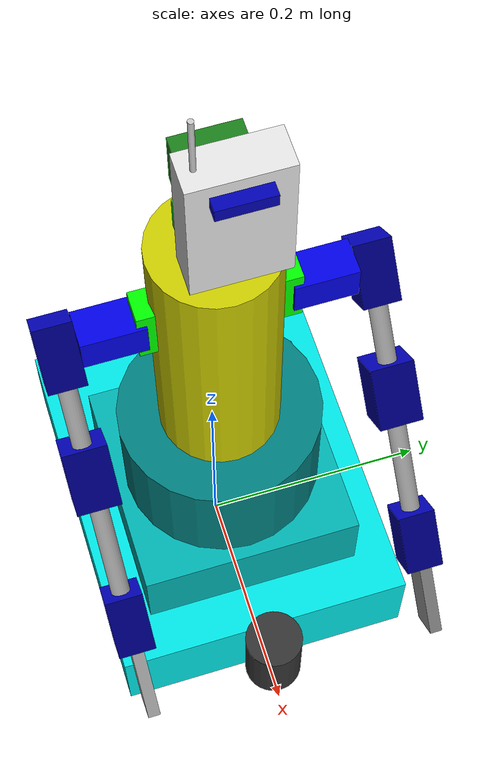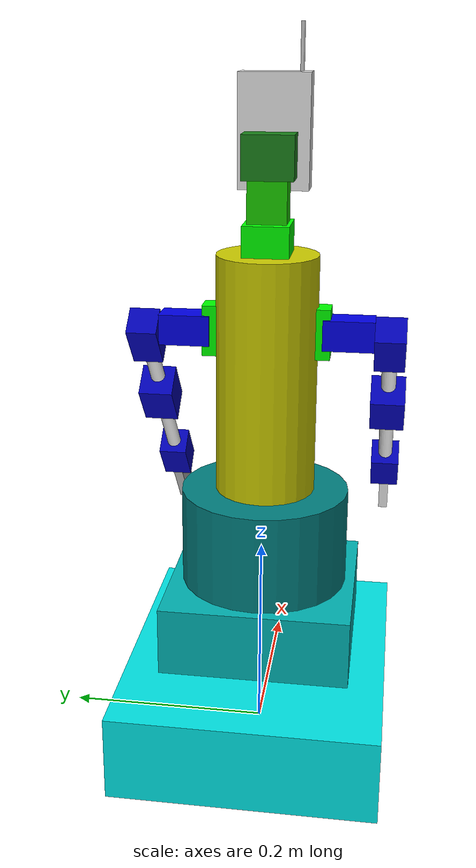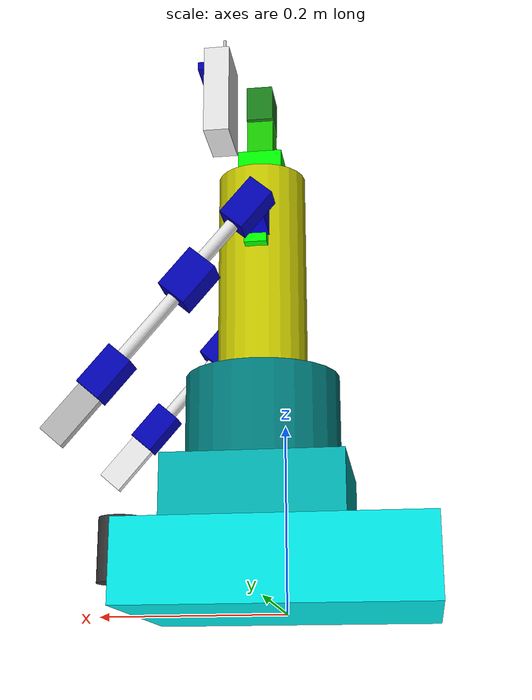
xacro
<?xml version="1.0"?>
<robot name="fatiha" xmlns:xacro="http:/www.ros.org/wiki/xacro">

 	<link name="base_link">
		<visual>
		    <origin xyz="0 0 0.0425" rpy="0 0 0"/>
			<geometry>
				<box size="0.32 0.26 0.085"/>
			</geometry>
			<material name="Cyan1">
	       		<color rgba="0 0.9 0.9 1.0"/>
	     	</material>
		</visual>
	</link>

 	<link name="base_laser">
		<visual>
		    <origin xyz="0 0 0" rpy="0 0 0"/>
			<geometry>
				<cylinder radius="0.025" length="0.07"/>
			</geometry>
			<material name="Black1">
	       		<color rgba="0.2 0.2 0.2 1.0"/>
	     	</material>
		</visual>
	</link>

	<link name="cpu_link">
		<visual>
		    <origin xyz="0 0 0.035" rpy="0 0 0"/>
			<geometry>
				<box size="0.19 0.19 0.07"/>
			</geometry>
			<material name="Cyan2">
	       		<color rgba="0 0.7 0.7 1.0"/>
	     	</material>
		</visual>
	</link>

  	<link name="upper_base_link">
		<visual>
			<origin xyz="0 0 0.05" rpy="0 0 0"/>
			<geometry>
				<cylinder radius="0.085" length="0.10"/>
			</geometry>
	     	<material name="Cyan3">
				<color rgba="0 0.5 0.5 0"/>
			</material>
	   </visual>
	</link>

  	<link name="torso_link">
		<visual>
			<origin xyz="0 0 0.12" rpy="0 0 0"/>
			<geometry>
				<cylinder radius="0.05" length="0.24"/>
			</geometry>
	     	<material name="Yellow2">
				<color rgba="0.8 0.8 0 1.0"/>
			</material>
	   </visual>
	</link>

	<link name="head_pan_link">
		<visual>
			<origin xyz="0 0 0.0225" rpy="0 0 0"/>
			<geometry>
				<box size="0.05 0.045 0.045"/>
			</geometry>
	     	<material name="Green1">
				<color rgba="0 1 0 1.0"/>
			</material>
	   </visual>
	</link>

	<link name="head_tilt_link">
		<visual>
			<origin xyz="0 0 0.02" rpy="0 0 0"/>
			<geometry>
				<box size="0.03 0.038 0.04"/>
			</geometry>
	     	<material name="Green2">
				<color rgba="0.1 0.8 0 1.0"/>
			</material>
	   </visual>
	</link>

	<link name="neck_link">
		<visual>
			<origin xyz="0 0 0.021" rpy="0 0 0"/>
			<geometry>
				<box size="0.03 0.05 0.042"/>
			</geometry>
	     	<material name="Green3">
				<color rgba="0.1 0.5 0.1 1.0"/>
			</material>
	   </visual>
	</link>

	<link name="head_link">
		<visual>
			<origin xyz="0 0 0.025" rpy="0 0 0"/>
			<geometry>
				<box size="0.03 0.07 0.11"/>
			</geometry>
	     	<material name="Grey1">
				<color rgba="0.9 0.9 0.9 1.0"/>
			</material>
	   </visual>
	</link>

	<link name="eyes_link">
		<visual>
			<origin xyz="0 0 0.035" rpy="0 0 0" />
			<geometry>
				<box size="0.01 0.04 0.01" />
			</geometry>
	     	<material name="Blue2">
				<color rgba="0 0 0.7 1.0"/>
			</material>
	   </visual>
	</link>

	<link name="antenna_link">
		<visual>
			<origin xyz="0 0 0.035" rpy="0 0 0"/>
			<geometry>
				<cylinder radius="0.002" length="0.05"/>
			</geometry>
	     	<material name="Grey3">
				<color rgba="0.8 0.8 0.8 1.0"/>
			</material>
	   </visual>
	</link>

	<link name="left_shoulder_link">
		<visual>
			<origin xyz="0 0 0" rpy="0 0 0"/>
			<geometry>
				<box size="0.025 0.015 0.05"/>
			</geometry>
	     	<material name="Green1">
				<color rgba="0 1 0 1.0"/>
			</material>
	   </visual>
	</link>

	<link name="right_shoulder_link">
		<visual>
			<origin xyz="0 0 0" rpy="0 0 0"/>
			<geometry>
				<box size="0.025 0.015 0.05"/>
			</geometry>
	     	<material name="Green1">
				<color rgba="0 1 0 1.0"/>
			</material>
	   </visual>
	</link>

	<link name="left_shoulder_forward_link">
		<visual>
			<origin xyz="0 0 0" rpy="0 0 0"/>
			<geometry>
				<box size="0.03 0.05 0.03"/>
			</geometry>
	     	<material name="Blue1">
				<color rgba="0 0 0.9 1.0"/>
			</material>
	   </visual>
	</link>

	<link name="right_shoulder_forward_link">
		<visual>
			<origin xyz="0 0 0" rpy="0 0 0"/>
			<geometry>
				<box size="0.03 0.05 0.03"/>
			</geometry>
	     	<material name="Blue1">
				<color rgba="0 0 0.9 1.0"/>
			</material>
	   </visual>
	</link>

	<link name="left_shoulder_up_link">
		<visual>
			<origin xyz="0 0 0" rpy="1.57 0 0"/>
			<geometry>
				<box size="0.03 0.05 0.03"/>
			</geometry>
	     	<material name="Blue2">
				<color rgba="0 0 0.7 1.0"/>
			</material>
	   </visual>
	</link>

	<link name="right_shoulder_up_link">
		<visual>
			<origin xyz="0 0 0" rpy="1.57 0 0"/>
			<geometry>
				<box size="0.03 0.05 0.03"/>
			</geometry>
	     	<material name="Blue2">
				<color rgba="0 0 0.7 1.0"/>
			</material>
	   </visual>
	</link>

	<link name="left_upper_arm_link">
		<visual>
			<origin xyz="0 0 0" rpy="0 0 0"/>
			<geometry>
				<cylinder radius="0.0075" length="0.05"/>
			</geometry>
	     	<material name="Grey1">
				<color rgba="0.9 0.9 0.9 1.0"/>
			</material>
	   </visual>
	</link>

	<link name="right_upper_arm_link">
		<visual>
			<origin xyz="0 0 0" rpy="0 0 0"/>
			<geometry>
				<cylinder radius="0.0075" length="0.05"/>
			</geometry>
	     	<material name="Grey1">
				<color rgba="0.9 0.9 0.9 1.0"/>
			</material>
	   </visual>
	</link>

	<link name="left_elbow_link">
		<visual>
			<origin xyz="0 0 0" rpy="0 0 1.57"/>
			<geometry>
				<box size="0.035 0.035 0.05"/>
			</geometry>
	     	<material name="Blue2">
				<color rgba="0 0 0.7 1.0"/>
			</material>
	   </visual>
	</link>

	<link name="right_elbow_link">
		<visual>
			<origin xyz="0 0 0" rpy="0 0 1.57"/>
			<geometry>
				<box size="0.035 0.035 0.05"/>
			</geometry>
	     	<material name="Blue2">
				<color rgba="0 0 0.7 1.0"/>
			</material>
	   </visual>
	</link>

	<link name="left_lower_arm_link">
		<visual>
			<origin xyz="0 0 0" rpy="0 0 0"/>
			<geometry>
				<cylinder radius="0.0075" length="0.11"/>
			</geometry>
	     	<material name="Grey1">
				<color rgba="0.9 0.9 0.9 1.0"/>
			</material>
	   </visual>
	</link>

	<link name="right_lower_arm_link">
		<visual>
			<origin xyz="0 0 0" rpy="0 0 0"/>
			<geometry>
				<cylinder radius="0.0075" length="0.11"/>
			</geometry>
	     	<material name="Grey1">
				<color rgba="0.9 0.9 0.9 1.0"/>
			</material>
	   </visual>
	</link>

	<link name="left_wrist_link">
		<visual>
			<origin xyz="0 0 0" rpy="1.57 0 0"/>
			<geometry>
				<box size="0.03 0.05 0.03"/>
			</geometry>
	     	<material name="Blue2">
				<color rgba="0 0 0.7 1.0"/>
			</material>
	   </visual>
	</link>

	<link name="right_wrist_link">
		<visual>
			<origin xyz="0 0 0" rpy="1.57 0 0"/>
			<geometry>
				<box size="0.03 0.05 0.03"/>
			</geometry>
	     	<material name="Blue2">
				<color rgba="0 0 0.7 1.0"/>
			</material>
	   </visual>
	</link>

	<link name="left_hand_link">
		<visual>
			<origin xyz="0 0 0" rpy="0 0 0"/>
			<geometry>
				<box size="0.03 0.01 0.06"/>
			</geometry>
	     	<material name="Grey1">
				<color rgba="0.7 0.7 0.7 1.0"/>
			</material>
	   </visual>
	</link>

	<link name="right_hand_link">
		<visual>
			<origin xyz="0 0 0" rpy="0 0 0"/>
			<geometry>
				<box size="0.03 0.01 0.06"/>
			</geometry>
	     	<material name="Grey1">
				<color rgba="0.9 0.9 0.9 1.0"/>
			</material>
	   </visual>
	</link>

	<joint name="cpu_joint" type="fixed">
    	<parent link="base_link"/>
    	<child link="cpu_link"/>
    	<origin xyz="0.025 0 0.085" rpy="0 0 0"/>
	</joint>

	<joint name="base_laser_joint" type="fixed">
    	<parent link="base_link"/>
    	<child link="base_laser"/>
    	<origin xyz="0.18 0 0.07" rpy="0 0 0"/>
	</joint>

	<joint name="upper_base_joint" type="fixed">
    	<parent link="cpu_link"/>
    	<child link="upper_base_link"/>
    	<origin xyz="0 0 0.07" rpy="0 0 0"/>
	</joint>

	<joint name="torso_joint" type="revolute">
    	<parent link="upper_base_link"/>
    	<child link="torso_link"/>
    	<origin xyz="0 0 0.10" rpy="0 0 0"/>
    	<axis xyz="0 0 1"/>
    	<limit lower="-3.1416" upper="3.1416" effort="10" velocity="3"/>
  	</joint>

	<joint name="head_pan_servo" type="fixed">
    	<parent link="torso_link"/>
    	<child link="head_pan_link"/>
    	<origin xyz="0 0 0.225" rpy="0 0 0"/>
	</joint>

	<joint name="head_pan_joint" type="revolute">
    	<parent link="head_pan_link"/>
    	<child link="head_tilt_link"/>
    	<origin xyz="0 0 0.045" rpy="0 0 0"/>
    	<axis xyz="0 0 1"/>
    	<limit lower="-3.1416" upper="3.1416" effort="10" velocity="3"/>
  	</joint>

 	<joint name="head_tilt_joint" type="revolute">
    	<parent link="head_tilt_link"/>
    	<child link="neck_link"/>
    	<origin xyz="0 0 0.04" rpy="0 0 0"/>
    	<axis xyz="0 1 0"/>
    	<limit lower="-1.57" upper="1.57" effort="10" velocity="3"/>
  	</joint>

 	<joint name="neck_joint" type="fixed">
    	<parent link="neck_link"/>
    	<child link="head_link"/>
    	<origin xyz="0.05 0 0.015" rpy="0 0 0"/>
	</joint>

	<joint name="eyes_joint" type="fixed">
    	<parent link="head_link" />
    	<child link="eyes_link" />
    	<origin xyz="0.02 0 0.03" rpy="0 0 0" />
	</joint>

	<joint name="antenna_joint" type="fixed">
    	<parent link="head_link"/>
    	<child link="antenna_link"/>
    	<origin xyz="0.0 -0.025 0.065" rpy="0 0 0"/>
	</joint>

 	<joint name="left_shoulder_joint" type="fixed">
    	<parent link="torso_link"/>
    	<child link="left_shoulder_link"/>
    	<origin xyz="0 0.055 0.165" rpy="0 0 0"/>
	</joint>

 	<joint name="right_shoulder_joint" type="fixed">
    	<parent link="torso_link"/>
    	<child link="right_shoulder_link"/>
    	<origin xyz="0 -0.055 0.165" rpy="0 0 0"/>
	</joint>

 	<joint name="left_shoulder_forward_joint" type="revolute">
    	<parent link="left_shoulder_link"/>
    	<child link="left_shoulder_forward_link"/>
    	<origin xyz="0 0.025 0" rpy="0 0 0"/>
       	<limit lower="-1.57" upper="1.57" effort="10" velocity="3"/>
        <axis xyz="0 0 1"/>
	</joint>

 	<joint name="right_shoulder_forward_joint" type="revolute">
    	<parent link="right_shoulder_link"/>
    	<child link="right_shoulder_forward_link"/>
    	<origin xyz="0 -0.025 0" rpy="0 0 0"/>
       	<limit lower="-1.57" upper="1.57" effort="10" velocity="3"/>
        <axis xyz="0 0 1"/>
	</joint>

 	<joint name="left_shoulder_up_joint" type="revolute">
    	<parent link="left_shoulder_forward_link"/>
    	<child link="left_shoulder_up_link"/>
    	<origin xyz="0 0.04 -0.01" rpy="0 -0.707 0"/>
       	<limit lower="-1.57" upper="1.57" effort="10" velocity="3"/>
        <axis xyz="0 1 0"/>
	</joint>

 	<joint name="right_shoulder_up_joint" type="revolute">
    	<parent link="right_shoulder_forward_link"/>
    	<child link="right_shoulder_up_link"/>
    	<origin xyz="0 -0.04 -0.01" rpy="0 -0.707 0"/>
       	<limit lower="-1.57" upper="1.57" effort="10" velocity="3"/>
        <axis xyz="0 1 0"/>
	</joint>

 	<joint name="left_upper_arm_joint" type="fixed">
    	<parent link="left_shoulder_up_link"/>
    	<child link="left_upper_arm_link"/>
    	<origin xyz="0 0 -0.05" rpy="0 0 0"/>
	</joint>

 	<joint name="right_upper_arm_joint" type="fixed">
    	<parent link="right_shoulder_up_link"/>
    	<child link="right_upper_arm_link"/>
    	<origin xyz="0 0 -0.05" rpy="0 0 0"/>
	</joint>

 	<joint name="left_elbow_joint" type="revolute">
    	<parent link="left_upper_arm_link"/>
    	<child link="left_elbow_link"/>
    	<origin xyz="-0.005 0 -0.05" rpy="0 0 0"/>
       	<limit lower="-3.146" upper="3.146" effort="10" velocity="3"/>
        <axis xyz="0 0 1"/>
	</joint>

 	<joint name="right_elbow_joint" type="revolute">
    	<parent link="right_upper_arm_link"/>
    	<child link="right_elbow_link"/>
    	<origin xyz="-0.005 0 -0.05" rpy="0 0 0"/>
       	<limit lower="-3.146" upper="3.146" effort="10" velocity="3"/>
        <axis xyz="0 0 1"/>
	</joint>

 	<joint name="left_lower_arm_joint" type="fixed">
    	<parent link="left_elbow_link"/>
    	<child link="left_lower_arm_link"/>
    	<origin xyz="0 0 -0.08" rpy="0 0 0"/>
	</joint>

 	<joint name="right_lower_arm_joint" type="fixed">
    	<parent link="right_elbow_link"/>
    	<child link="right_lower_arm_link"/>
    	<origin xyz="0 0 -0.08" rpy="0 0 0"/>
	</joint>

 	<joint name="left_wrist_joint" type="revolute">
    	<parent link="left_lower_arm_link"/>
    	<child link="left_wrist_link"/>
    	<origin xyz="0 0 -0.05" rpy="0 0 0"/>
       	<limit lower="-1.57" upper="1.57" effort="10" velocity="3"/>
        <axis xyz="1 0 0"/>
	</joint>

 	<joint name="right_wrist_joint" type="revolute">
    	<parent link="right_lower_arm_link"/>
    	<child link="right_wrist_link"/>
    	<origin xyz="0 0 -0.05" rpy="0 0 0"/>
       	<limit lower="-1.57" upper="1.57" effort="10" velocity="3"/>
        <axis xyz="1 0 0"/>
	</joint>

 	<joint name="left_hand_joint" type="fixed">
    	<parent link="left_wrist_link"/>
    	<child link="left_hand_link"/>
    	<origin xyz="0 0 -0.055" rpy="0 0 0"/>
	</joint>

 	<joint name="right_hand_joint" type="fixed">
    	<parent link="right_wrist_link"/>
    	<child link="right_hand_link"/>
    	<origin xyz="0 0 -0.055" rpy="0 0 0"/>
	</joint>

</robot>
